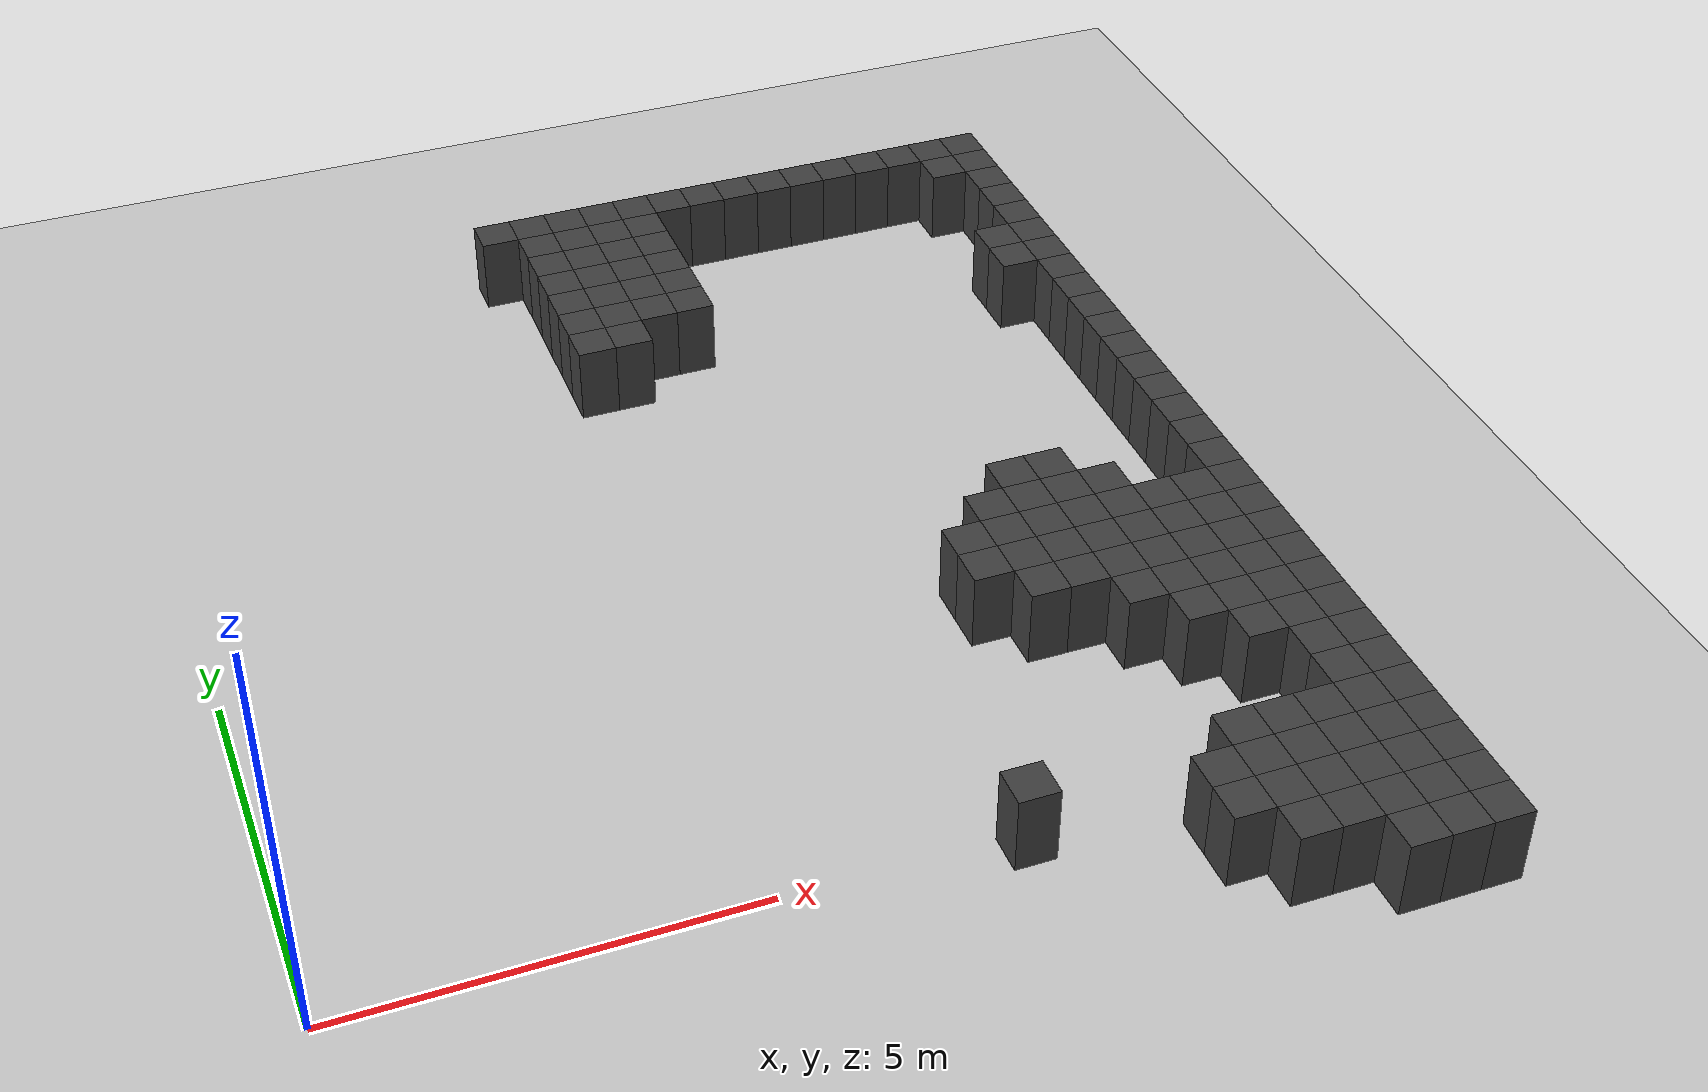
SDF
<sdf version="1.7">
 <world name="map_7981">
  <model name="ground_plane">
   <static>true</static>
   <link name="link">
    <collision name="collision">
     <geometry><plane><normal>0 0 1</normal><size>200 200</size></plane></geometry>
    </collision>
    <visual name="visual">
     <geometry><plane><normal>0 0 1</normal><size>200 200</size></plane></geometry>
     <material><ambient>0.8 0.8 0.8 1</ambient><diffuse>0.8 0.8 0.8 1</diffuse></material>
    </visual>
   </link>
  </model>
  <model name="maze_environment">
   <static>true</static>
   <link name="wall_35">
    <pose>5.250 12.250 0.500 0 0 0</pose>
    <collision name="col"><geometry><box><size>0.5 0.5 1.0</size></box></geometry></collision>
    <visual name="vis">
     <geometry><box><size>0.5 0.5 1.0</size></box></geometry>
     <material><ambient>0.15 0.15 0.15 1</ambient><diffuse>0.25 0.25 0.25 1</diffuse></material>
    </visual>
   </link>
   <link name="wall_36">
    <pose>5.750 12.250 0.500 0 0 0</pose>
    <collision name="col"><geometry><box><size>0.5 0.5 1.0</size></box></geometry></collision>
    <visual name="vis">
     <geometry><box><size>0.5 0.5 1.0</size></box></geometry>
     <material><ambient>0.15 0.15 0.15 1</ambient><diffuse>0.25 0.25 0.25 1</diffuse></material>
    </visual>
   </link>
   <link name="wall_37">
    <pose>6.250 12.250 0.500 0 0 0</pose>
    <collision name="col"><geometry><box><size>0.5 0.5 1.0</size></box></geometry></collision>
    <visual name="vis">
     <geometry><box><size>0.5 0.5 1.0</size></box></geometry>
     <material><ambient>0.15 0.15 0.15 1</ambient><diffuse>0.25 0.25 0.25 1</diffuse></material>
    </visual>
   </link>
   <link name="wall_38">
    <pose>6.750 12.250 0.500 0 0 0</pose>
    <collision name="col"><geometry><box><size>0.5 0.5 1.0</size></box></geometry></collision>
    <visual name="vis">
     <geometry><box><size>0.5 0.5 1.0</size></box></geometry>
     <material><ambient>0.15 0.15 0.15 1</ambient><diffuse>0.25 0.25 0.25 1</diffuse></material>
    </visual>
   </link>
   <link name="wall_39">
    <pose>7.250 12.250 0.500 0 0 0</pose>
    <collision name="col"><geometry><box><size>0.5 0.5 1.0</size></box></geometry></collision>
    <visual name="vis">
     <geometry><box><size>0.5 0.5 1.0</size></box></geometry>
     <material><ambient>0.15 0.15 0.15 1</ambient><diffuse>0.25 0.25 0.25 1</diffuse></material>
    </visual>
   </link>
   <link name="wall_40">
    <pose>7.750 12.250 0.500 0 0 0</pose>
    <collision name="col"><geometry><box><size>0.5 0.5 1.0</size></box></geometry></collision>
    <visual name="vis">
     <geometry><box><size>0.5 0.5 1.0</size></box></geometry>
     <material><ambient>0.15 0.15 0.15 1</ambient><diffuse>0.25 0.25 0.25 1</diffuse></material>
    </visual>
   </link>
   <link name="wall_41">
    <pose>8.250 12.250 0.500 0 0 0</pose>
    <collision name="col"><geometry><box><size>0.5 0.5 1.0</size></box></geometry></collision>
    <visual name="vis">
     <geometry><box><size>0.5 0.5 1.0</size></box></geometry>
     <material><ambient>0.15 0.15 0.15 1</ambient><diffuse>0.25 0.25 0.25 1</diffuse></material>
    </visual>
   </link>
   <link name="wall_42">
    <pose>8.750 12.250 0.500 0 0 0</pose>
    <collision name="col"><geometry><box><size>0.5 0.5 1.0</size></box></geometry></collision>
    <visual name="vis">
     <geometry><box><size>0.5 0.5 1.0</size></box></geometry>
     <material><ambient>0.15 0.15 0.15 1</ambient><diffuse>0.25 0.25 0.25 1</diffuse></material>
    </visual>
   </link>
   <link name="wall_43">
    <pose>9.250 12.250 0.500 0 0 0</pose>
    <collision name="col"><geometry><box><size>0.5 0.5 1.0</size></box></geometry></collision>
    <visual name="vis">
     <geometry><box><size>0.5 0.5 1.0</size></box></geometry>
     <material><ambient>0.15 0.15 0.15 1</ambient><diffuse>0.25 0.25 0.25 1</diffuse></material>
    </visual>
   </link>
   <link name="wall_44">
    <pose>9.750 12.250 0.500 0 0 0</pose>
    <collision name="col"><geometry><box><size>0.5 0.5 1.0</size></box></geometry></collision>
    <visual name="vis">
     <geometry><box><size>0.5 0.5 1.0</size></box></geometry>
     <material><ambient>0.15 0.15 0.15 1</ambient><diffuse>0.25 0.25 0.25 1</diffuse></material>
    </visual>
   </link>
   <link name="wall_45">
    <pose>10.250 12.250 0.500 0 0 0</pose>
    <collision name="col"><geometry><box><size>0.5 0.5 1.0</size></box></geometry></collision>
    <visual name="vis">
     <geometry><box><size>0.5 0.5 1.0</size></box></geometry>
     <material><ambient>0.15 0.15 0.15 1</ambient><diffuse>0.25 0.25 0.25 1</diffuse></material>
    </visual>
   </link>
   <link name="wall_46">
    <pose>10.750 12.250 0.500 0 0 0</pose>
    <collision name="col"><geometry><box><size>0.5 0.5 1.0</size></box></geometry></collision>
    <visual name="vis">
     <geometry><box><size>0.5 0.5 1.0</size></box></geometry>
     <material><ambient>0.15 0.15 0.15 1</ambient><diffuse>0.25 0.25 0.25 1</diffuse></material>
    </visual>
   </link>
   <link name="wall_47">
    <pose>11.250 12.250 0.500 0 0 0</pose>
    <collision name="col"><geometry><box><size>0.5 0.5 1.0</size></box></geometry></collision>
    <visual name="vis">
     <geometry><box><size>0.5 0.5 1.0</size></box></geometry>
     <material><ambient>0.15 0.15 0.15 1</ambient><diffuse>0.25 0.25 0.25 1</diffuse></material>
    </visual>
   </link>
   <link name="wall_48">
    <pose>11.750 12.250 0.500 0 0 0</pose>
    <collision name="col"><geometry><box><size>0.5 0.5 1.0</size></box></geometry></collision>
    <visual name="vis">
     <geometry><box><size>0.5 0.5 1.0</size></box></geometry>
     <material><ambient>0.15 0.15 0.15 1</ambient><diffuse>0.25 0.25 0.25 1</diffuse></material>
    </visual>
   </link>
   <link name="wall_49">
    <pose>12.250 12.250 0.500 0 0 0</pose>
    <collision name="col"><geometry><box><size>0.5 0.5 1.0</size></box></geometry></collision>
    <visual name="vis">
     <geometry><box><size>0.5 0.5 1.0</size></box></geometry>
     <material><ambient>0.15 0.15 0.15 1</ambient><diffuse>0.25 0.25 0.25 1</diffuse></material>
    </visual>
   </link>
   <link name="wall_67">
    <pose>5.750 11.750 0.500 0 0 0</pose>
    <collision name="col"><geometry><box><size>0.5 0.5 1.0</size></box></geometry></collision>
    <visual name="vis">
     <geometry><box><size>0.5 0.5 1.0</size></box></geometry>
     <material><ambient>0.15 0.15 0.15 1</ambient><diffuse>0.25 0.25 0.25 1</diffuse></material>
    </visual>
   </link>
   <link name="wall_68">
    <pose>6.250 11.750 0.500 0 0 0</pose>
    <collision name="col"><geometry><box><size>0.5 0.5 1.0</size></box></geometry></collision>
    <visual name="vis">
     <geometry><box><size>0.5 0.5 1.0</size></box></geometry>
     <material><ambient>0.15 0.15 0.15 1</ambient><diffuse>0.25 0.25 0.25 1</diffuse></material>
    </visual>
   </link>
   <link name="wall_69">
    <pose>6.750 11.750 0.500 0 0 0</pose>
    <collision name="col"><geometry><box><size>0.5 0.5 1.0</size></box></geometry></collision>
    <visual name="vis">
     <geometry><box><size>0.5 0.5 1.0</size></box></geometry>
     <material><ambient>0.15 0.15 0.15 1</ambient><diffuse>0.25 0.25 0.25 1</diffuse></material>
    </visual>
   </link>
   <link name="wall_70">
    <pose>7.250 11.750 0.500 0 0 0</pose>
    <collision name="col"><geometry><box><size>0.5 0.5 1.0</size></box></geometry></collision>
    <visual name="vis">
     <geometry><box><size>0.5 0.5 1.0</size></box></geometry>
     <material><ambient>0.15 0.15 0.15 1</ambient><diffuse>0.25 0.25 0.25 1</diffuse></material>
    </visual>
   </link>
   <link name="wall_71">
    <pose>11.750 11.750 0.500 0 0 0</pose>
    <collision name="col"><geometry><box><size>0.5 0.5 1.0</size></box></geometry></collision>
    <visual name="vis">
     <geometry><box><size>0.5 0.5 1.0</size></box></geometry>
     <material><ambient>0.15 0.15 0.15 1</ambient><diffuse>0.25 0.25 0.25 1</diffuse></material>
    </visual>
   </link>
   <link name="wall_72">
    <pose>12.250 11.750 0.500 0 0 0</pose>
    <collision name="col"><geometry><box><size>0.5 0.5 1.0</size></box></geometry></collision>
    <visual name="vis">
     <geometry><box><size>0.5 0.5 1.0</size></box></geometry>
     <material><ambient>0.15 0.15 0.15 1</ambient><diffuse>0.25 0.25 0.25 1</diffuse></material>
    </visual>
   </link>
   <link name="wall_83">
    <pose>5.750 11.250 0.500 0 0 0</pose>
    <collision name="col"><geometry><box><size>0.5 0.5 1.0</size></box></geometry></collision>
    <visual name="vis">
     <geometry><box><size>0.5 0.5 1.0</size></box></geometry>
     <material><ambient>0.15 0.15 0.15 1</ambient><diffuse>0.25 0.25 0.25 1</diffuse></material>
    </visual>
   </link>
   <link name="wall_84">
    <pose>6.250 11.250 0.500 0 0 0</pose>
    <collision name="col"><geometry><box><size>0.5 0.5 1.0</size></box></geometry></collision>
    <visual name="vis">
     <geometry><box><size>0.5 0.5 1.0</size></box></geometry>
     <material><ambient>0.15 0.15 0.15 1</ambient><diffuse>0.25 0.25 0.25 1</diffuse></material>
    </visual>
   </link>
   <link name="wall_85">
    <pose>6.750 11.250 0.500 0 0 0</pose>
    <collision name="col"><geometry><box><size>0.5 0.5 1.0</size></box></geometry></collision>
    <visual name="vis">
     <geometry><box><size>0.5 0.5 1.0</size></box></geometry>
     <material><ambient>0.15 0.15 0.15 1</ambient><diffuse>0.25 0.25 0.25 1</diffuse></material>
    </visual>
   </link>
   <link name="wall_86">
    <pose>7.250 11.250 0.500 0 0 0</pose>
    <collision name="col"><geometry><box><size>0.5 0.5 1.0</size></box></geometry></collision>
    <visual name="vis">
     <geometry><box><size>0.5 0.5 1.0</size></box></geometry>
     <material><ambient>0.15 0.15 0.15 1</ambient><diffuse>0.25 0.25 0.25 1</diffuse></material>
    </visual>
   </link>
   <link name="wall_87">
    <pose>12.250 11.250 0.500 0 0 0</pose>
    <collision name="col"><geometry><box><size>0.5 0.5 1.0</size></box></geometry></collision>
    <visual name="vis">
     <geometry><box><size>0.5 0.5 1.0</size></box></geometry>
     <material><ambient>0.15 0.15 0.15 1</ambient><diffuse>0.25 0.25 0.25 1</diffuse></material>
    </visual>
   </link>
   <link name="wall_96">
    <pose>5.750 10.750 0.500 0 0 0</pose>
    <collision name="col"><geometry><box><size>0.5 0.5 1.0</size></box></geometry></collision>
    <visual name="vis">
     <geometry><box><size>0.5 0.5 1.0</size></box></geometry>
     <material><ambient>0.15 0.15 0.15 1</ambient><diffuse>0.25 0.25 0.25 1</diffuse></material>
    </visual>
   </link>
   <link name="wall_97">
    <pose>6.250 10.750 0.500 0 0 0</pose>
    <collision name="col"><geometry><box><size>0.5 0.5 1.0</size></box></geometry></collision>
    <visual name="vis">
     <geometry><box><size>0.5 0.5 1.0</size></box></geometry>
     <material><ambient>0.15 0.15 0.15 1</ambient><diffuse>0.25 0.25 0.25 1</diffuse></material>
    </visual>
   </link>
   <link name="wall_98">
    <pose>6.750 10.750 0.500 0 0 0</pose>
    <collision name="col"><geometry><box><size>0.5 0.5 1.0</size></box></geometry></collision>
    <visual name="vis">
     <geometry><box><size>0.5 0.5 1.0</size></box></geometry>
     <material><ambient>0.15 0.15 0.15 1</ambient><diffuse>0.25 0.25 0.25 1</diffuse></material>
    </visual>
   </link>
   <link name="wall_99">
    <pose>7.250 10.750 0.500 0 0 0</pose>
    <collision name="col"><geometry><box><size>0.5 0.5 1.0</size></box></geometry></collision>
    <visual name="vis">
     <geometry><box><size>0.5 0.5 1.0</size></box></geometry>
     <material><ambient>0.15 0.15 0.15 1</ambient><diffuse>0.25 0.25 0.25 1</diffuse></material>
    </visual>
   </link>
   <link name="wall_100">
    <pose>12.250 10.750 0.500 0 0 0</pose>
    <collision name="col"><geometry><box><size>0.5 0.5 1.0</size></box></geometry></collision>
    <visual name="vis">
     <geometry><box><size>0.5 0.5 1.0</size></box></geometry>
     <material><ambient>0.15 0.15 0.15 1</ambient><diffuse>0.25 0.25 0.25 1</diffuse></material>
    </visual>
   </link>
   <link name="wall_109">
    <pose>5.750 10.250 0.500 0 0 0</pose>
    <collision name="col"><geometry><box><size>0.5 0.5 1.0</size></box></geometry></collision>
    <visual name="vis">
     <geometry><box><size>0.5 0.5 1.0</size></box></geometry>
     <material><ambient>0.15 0.15 0.15 1</ambient><diffuse>0.25 0.25 0.25 1</diffuse></material>
    </visual>
   </link>
   <link name="wall_110">
    <pose>6.250 10.250 0.500 0 0 0</pose>
    <collision name="col"><geometry><box><size>0.5 0.5 1.0</size></box></geometry></collision>
    <visual name="vis">
     <geometry><box><size>0.5 0.5 1.0</size></box></geometry>
     <material><ambient>0.15 0.15 0.15 1</ambient><diffuse>0.25 0.25 0.25 1</diffuse></material>
    </visual>
   </link>
   <link name="wall_111">
    <pose>6.750 10.250 0.500 0 0 0</pose>
    <collision name="col"><geometry><box><size>0.5 0.5 1.0</size></box></geometry></collision>
    <visual name="vis">
     <geometry><box><size>0.5 0.5 1.0</size></box></geometry>
     <material><ambient>0.15 0.15 0.15 1</ambient><diffuse>0.25 0.25 0.25 1</diffuse></material>
    </visual>
   </link>
   <link name="wall_112">
    <pose>7.250 10.250 0.500 0 0 0</pose>
    <collision name="col"><geometry><box><size>0.5 0.5 1.0</size></box></geometry></collision>
    <visual name="vis">
     <geometry><box><size>0.5 0.5 1.0</size></box></geometry>
     <material><ambient>0.15 0.15 0.15 1</ambient><diffuse>0.25 0.25 0.25 1</diffuse></material>
    </visual>
   </link>
   <link name="wall_113">
    <pose>12.250 10.250 0.500 0 0 0</pose>
    <collision name="col"><geometry><box><size>0.5 0.5 1.0</size></box></geometry></collision>
    <visual name="vis">
     <geometry><box><size>0.5 0.5 1.0</size></box></geometry>
     <material><ambient>0.15 0.15 0.15 1</ambient><diffuse>0.25 0.25 0.25 1</diffuse></material>
    </visual>
   </link>
   <link name="wall_123">
    <pose>5.750 9.750 0.500 0 0 0</pose>
    <collision name="col"><geometry><box><size>0.5 0.5 1.0</size></box></geometry></collision>
    <visual name="vis">
     <geometry><box><size>0.5 0.5 1.0</size></box></geometry>
     <material><ambient>0.15 0.15 0.15 1</ambient><diffuse>0.25 0.25 0.25 1</diffuse></material>
    </visual>
   </link>
   <link name="wall_124">
    <pose>6.250 9.750 0.500 0 0 0</pose>
    <collision name="col"><geometry><box><size>0.5 0.5 1.0</size></box></geometry></collision>
    <visual name="vis">
     <geometry><box><size>0.5 0.5 1.0</size></box></geometry>
     <material><ambient>0.15 0.15 0.15 1</ambient><diffuse>0.25 0.25 0.25 1</diffuse></material>
    </visual>
   </link>
   <link name="wall_125">
    <pose>6.750 9.750 0.500 0 0 0</pose>
    <collision name="col"><geometry><box><size>0.5 0.5 1.0</size></box></geometry></collision>
    <visual name="vis">
     <geometry><box><size>0.5 0.5 1.0</size></box></geometry>
     <material><ambient>0.15 0.15 0.15 1</ambient><diffuse>0.25 0.25 0.25 1</diffuse></material>
    </visual>
   </link>
   <link name="wall_126">
    <pose>7.250 9.750 0.500 0 0 0</pose>
    <collision name="col"><geometry><box><size>0.5 0.5 1.0</size></box></geometry></collision>
    <visual name="vis">
     <geometry><box><size>0.5 0.5 1.0</size></box></geometry>
     <material><ambient>0.15 0.15 0.15 1</ambient><diffuse>0.25 0.25 0.25 1</diffuse></material>
    </visual>
   </link>
   <link name="wall_127">
    <pose>11.750 9.750 0.500 0 0 0</pose>
    <collision name="col"><geometry><box><size>0.5 0.5 1.0</size></box></geometry></collision>
    <visual name="vis">
     <geometry><box><size>0.5 0.5 1.0</size></box></geometry>
     <material><ambient>0.15 0.15 0.15 1</ambient><diffuse>0.25 0.25 0.25 1</diffuse></material>
    </visual>
   </link>
   <link name="wall_128">
    <pose>12.250 9.750 0.500 0 0 0</pose>
    <collision name="col"><geometry><box><size>0.5 0.5 1.0</size></box></geometry></collision>
    <visual name="vis">
     <geometry><box><size>0.5 0.5 1.0</size></box></geometry>
     <material><ambient>0.15 0.15 0.15 1</ambient><diffuse>0.25 0.25 0.25 1</diffuse></material>
    </visual>
   </link>
   <link name="wall_137">
    <pose>5.750 9.250 0.500 0 0 0</pose>
    <collision name="col"><geometry><box><size>0.5 0.5 1.0</size></box></geometry></collision>
    <visual name="vis">
     <geometry><box><size>0.5 0.5 1.0</size></box></geometry>
     <material><ambient>0.15 0.15 0.15 1</ambient><diffuse>0.25 0.25 0.25 1</diffuse></material>
    </visual>
   </link>
   <link name="wall_138">
    <pose>6.250 9.250 0.500 0 0 0</pose>
    <collision name="col"><geometry><box><size>0.5 0.5 1.0</size></box></geometry></collision>
    <visual name="vis">
     <geometry><box><size>0.5 0.5 1.0</size></box></geometry>
     <material><ambient>0.15 0.15 0.15 1</ambient><diffuse>0.25 0.25 0.25 1</diffuse></material>
    </visual>
   </link>
   <link name="wall_139">
    <pose>11.750 9.250 0.500 0 0 0</pose>
    <collision name="col"><geometry><box><size>0.5 0.5 1.0</size></box></geometry></collision>
    <visual name="vis">
     <geometry><box><size>0.5 0.5 1.0</size></box></geometry>
     <material><ambient>0.15 0.15 0.15 1</ambient><diffuse>0.25 0.25 0.25 1</diffuse></material>
    </visual>
   </link>
   <link name="wall_140">
    <pose>12.250 9.250 0.500 0 0 0</pose>
    <collision name="col"><geometry><box><size>0.5 0.5 1.0</size></box></geometry></collision>
    <visual name="vis">
     <geometry><box><size>0.5 0.5 1.0</size></box></geometry>
     <material><ambient>0.15 0.15 0.15 1</ambient><diffuse>0.25 0.25 0.25 1</diffuse></material>
    </visual>
   </link>
   <link name="wall_145">
    <pose>12.250 8.750 0.500 0 0 0</pose>
    <collision name="col"><geometry><box><size>0.5 0.5 1.0</size></box></geometry></collision>
    <visual name="vis">
     <geometry><box><size>0.5 0.5 1.0</size></box></geometry>
     <material><ambient>0.15 0.15 0.15 1</ambient><diffuse>0.25 0.25 0.25 1</diffuse></material>
    </visual>
   </link>
   <link name="wall_148">
    <pose>12.250 8.250 0.500 0 0 0</pose>
    <collision name="col"><geometry><box><size>0.5 0.5 1.0</size></box></geometry></collision>
    <visual name="vis">
     <geometry><box><size>0.5 0.5 1.0</size></box></geometry>
     <material><ambient>0.15 0.15 0.15 1</ambient><diffuse>0.25 0.25 0.25 1</diffuse></material>
    </visual>
   </link>
   <link name="wall_153">
    <pose>12.250 7.750 0.500 0 0 0</pose>
    <collision name="col"><geometry><box><size>0.5 0.5 1.0</size></box></geometry></collision>
    <visual name="vis">
     <geometry><box><size>0.5 0.5 1.0</size></box></geometry>
     <material><ambient>0.15 0.15 0.15 1</ambient><diffuse>0.25 0.25 0.25 1</diffuse></material>
    </visual>
   </link>
   <link name="wall_156">
    <pose>12.250 7.250 0.500 0 0 0</pose>
    <collision name="col"><geometry><box><size>0.5 0.5 1.0</size></box></geometry></collision>
    <visual name="vis">
     <geometry><box><size>0.5 0.5 1.0</size></box></geometry>
     <material><ambient>0.15 0.15 0.15 1</ambient><diffuse>0.25 0.25 0.25 1</diffuse></material>
    </visual>
   </link>
   <link name="wall_161">
    <pose>12.250 6.750 0.500 0 0 0</pose>
    <collision name="col"><geometry><box><size>0.5 0.5 1.0</size></box></geometry></collision>
    <visual name="vis">
     <geometry><box><size>0.5 0.5 1.0</size></box></geometry>
     <material><ambient>0.15 0.15 0.15 1</ambient><diffuse>0.25 0.25 0.25 1</diffuse></material>
    </visual>
   </link>
   <link name="wall_170">
    <pose>12.250 6.250 0.500 0 0 0</pose>
    <collision name="col"><geometry><box><size>0.5 0.5 1.0</size></box></geometry></collision>
    <visual name="vis">
     <geometry><box><size>0.5 0.5 1.0</size></box></geometry>
     <material><ambient>0.15 0.15 0.15 1</ambient><diffuse>0.25 0.25 0.25 1</diffuse></material>
    </visual>
   </link>
   <link name="wall_178">
    <pose>12.250 5.750 0.500 0 0 0</pose>
    <collision name="col"><geometry><box><size>0.5 0.5 1.0</size></box></geometry></collision>
    <visual name="vis">
     <geometry><box><size>0.5 0.5 1.0</size></box></geometry>
     <material><ambient>0.15 0.15 0.15 1</ambient><diffuse>0.25 0.25 0.25 1</diffuse></material>
    </visual>
   </link>
   <link name="wall_186">
    <pose>12.250 5.250 0.500 0 0 0</pose>
    <collision name="col"><geometry><box><size>0.5 0.5 1.0</size></box></geometry></collision>
    <visual name="vis">
     <geometry><box><size>0.5 0.5 1.0</size></box></geometry>
     <material><ambient>0.15 0.15 0.15 1</ambient><diffuse>0.25 0.25 0.25 1</diffuse></material>
    </visual>
   </link>
   <link name="wall_193">
    <pose>9.750 4.750 0.500 0 0 0</pose>
    <collision name="col"><geometry><box><size>0.5 0.5 1.0</size></box></geometry></collision>
    <visual name="vis">
     <geometry><box><size>0.5 0.5 1.0</size></box></geometry>
     <material><ambient>0.15 0.15 0.15 1</ambient><diffuse>0.25 0.25 0.25 1</diffuse></material>
    </visual>
   </link>
   <link name="wall_194">
    <pose>10.250 4.750 0.500 0 0 0</pose>
    <collision name="col"><geometry><box><size>0.5 0.5 1.0</size></box></geometry></collision>
    <visual name="vis">
     <geometry><box><size>0.5 0.5 1.0</size></box></geometry>
     <material><ambient>0.15 0.15 0.15 1</ambient><diffuse>0.25 0.25 0.25 1</diffuse></material>
    </visual>
   </link>
   <link name="wall_195">
    <pose>12.250 4.750 0.500 0 0 0</pose>
    <collision name="col"><geometry><box><size>0.5 0.5 1.0</size></box></geometry></collision>
    <visual name="vis">
     <geometry><box><size>0.5 0.5 1.0</size></box></geometry>
     <material><ambient>0.15 0.15 0.15 1</ambient><diffuse>0.25 0.25 0.25 1</diffuse></material>
    </visual>
   </link>
   <link name="wall_202">
    <pose>9.250 4.250 0.500 0 0 0</pose>
    <collision name="col"><geometry><box><size>0.5 0.5 1.0</size></box></geometry></collision>
    <visual name="vis">
     <geometry><box><size>0.5 0.5 1.0</size></box></geometry>
     <material><ambient>0.15 0.15 0.15 1</ambient><diffuse>0.25 0.25 0.25 1</diffuse></material>
    </visual>
   </link>
   <link name="wall_203">
    <pose>9.750 4.250 0.500 0 0 0</pose>
    <collision name="col"><geometry><box><size>0.5 0.5 1.0</size></box></geometry></collision>
    <visual name="vis">
     <geometry><box><size>0.5 0.5 1.0</size></box></geometry>
     <material><ambient>0.15 0.15 0.15 1</ambient><diffuse>0.25 0.25 0.25 1</diffuse></material>
    </visual>
   </link>
   <link name="wall_204">
    <pose>10.250 4.250 0.500 0 0 0</pose>
    <collision name="col"><geometry><box><size>0.5 0.5 1.0</size></box></geometry></collision>
    <visual name="vis">
     <geometry><box><size>0.5 0.5 1.0</size></box></geometry>
     <material><ambient>0.15 0.15 0.15 1</ambient><diffuse>0.25 0.25 0.25 1</diffuse></material>
    </visual>
   </link>
   <link name="wall_205">
    <pose>10.750 4.250 0.500 0 0 0</pose>
    <collision name="col"><geometry><box><size>0.5 0.5 1.0</size></box></geometry></collision>
    <visual name="vis">
     <geometry><box><size>0.5 0.5 1.0</size></box></geometry>
     <material><ambient>0.15 0.15 0.15 1</ambient><diffuse>0.25 0.25 0.25 1</diffuse></material>
    </visual>
   </link>
   <link name="wall_206">
    <pose>12.250 4.250 0.500 0 0 0</pose>
    <collision name="col"><geometry><box><size>0.5 0.5 1.0</size></box></geometry></collision>
    <visual name="vis">
     <geometry><box><size>0.5 0.5 1.0</size></box></geometry>
     <material><ambient>0.15 0.15 0.15 1</ambient><diffuse>0.25 0.25 0.25 1</diffuse></material>
    </visual>
   </link>
   <link name="wall_220">
    <pose>8.750 3.750 0.500 0 0 0</pose>
    <collision name="col"><geometry><box><size>0.5 0.5 1.0</size></box></geometry></collision>
    <visual name="vis">
     <geometry><box><size>0.5 0.5 1.0</size></box></geometry>
     <material><ambient>0.15 0.15 0.15 1</ambient><diffuse>0.25 0.25 0.25 1</diffuse></material>
    </visual>
   </link>
   <link name="wall_221">
    <pose>9.250 3.750 0.500 0 0 0</pose>
    <collision name="col"><geometry><box><size>0.5 0.5 1.0</size></box></geometry></collision>
    <visual name="vis">
     <geometry><box><size>0.5 0.5 1.0</size></box></geometry>
     <material><ambient>0.15 0.15 0.15 1</ambient><diffuse>0.25 0.25 0.25 1</diffuse></material>
    </visual>
   </link>
   <link name="wall_222">
    <pose>9.750 3.750 0.500 0 0 0</pose>
    <collision name="col"><geometry><box><size>0.5 0.5 1.0</size></box></geometry></collision>
    <visual name="vis">
     <geometry><box><size>0.5 0.5 1.0</size></box></geometry>
     <material><ambient>0.15 0.15 0.15 1</ambient><diffuse>0.25 0.25 0.25 1</diffuse></material>
    </visual>
   </link>
   <link name="wall_223">
    <pose>10.250 3.750 0.500 0 0 0</pose>
    <collision name="col"><geometry><box><size>0.5 0.5 1.0</size></box></geometry></collision>
    <visual name="vis">
     <geometry><box><size>0.5 0.5 1.0</size></box></geometry>
     <material><ambient>0.15 0.15 0.15 1</ambient><diffuse>0.25 0.25 0.25 1</diffuse></material>
    </visual>
   </link>
   <link name="wall_224">
    <pose>10.750 3.750 0.500 0 0 0</pose>
    <collision name="col"><geometry><box><size>0.5 0.5 1.0</size></box></geometry></collision>
    <visual name="vis">
     <geometry><box><size>0.5 0.5 1.0</size></box></geometry>
     <material><ambient>0.15 0.15 0.15 1</ambient><diffuse>0.25 0.25 0.25 1</diffuse></material>
    </visual>
   </link>
   <link name="wall_225">
    <pose>11.250 3.750 0.500 0 0 0</pose>
    <collision name="col"><geometry><box><size>0.5 0.5 1.0</size></box></geometry></collision>
    <visual name="vis">
     <geometry><box><size>0.5 0.5 1.0</size></box></geometry>
     <material><ambient>0.15 0.15 0.15 1</ambient><diffuse>0.25 0.25 0.25 1</diffuse></material>
    </visual>
   </link>
   <link name="wall_226">
    <pose>11.750 3.750 0.500 0 0 0</pose>
    <collision name="col"><geometry><box><size>0.5 0.5 1.0</size></box></geometry></collision>
    <visual name="vis">
     <geometry><box><size>0.5 0.5 1.0</size></box></geometry>
     <material><ambient>0.15 0.15 0.15 1</ambient><diffuse>0.25 0.25 0.25 1</diffuse></material>
    </visual>
   </link>
   <link name="wall_227">
    <pose>12.250 3.750 0.500 0 0 0</pose>
    <collision name="col"><geometry><box><size>0.5 0.5 1.0</size></box></geometry></collision>
    <visual name="vis">
     <geometry><box><size>0.5 0.5 1.0</size></box></geometry>
     <material><ambient>0.15 0.15 0.15 1</ambient><diffuse>0.25 0.25 0.25 1</diffuse></material>
    </visual>
   </link>
   <link name="wall_251">
    <pose>8.750 3.250 0.500 0 0 0</pose>
    <collision name="col"><geometry><box><size>0.5 0.5 1.0</size></box></geometry></collision>
    <visual name="vis">
     <geometry><box><size>0.5 0.5 1.0</size></box></geometry>
     <material><ambient>0.15 0.15 0.15 1</ambient><diffuse>0.25 0.25 0.25 1</diffuse></material>
    </visual>
   </link>
   <link name="wall_252">
    <pose>9.250 3.250 0.500 0 0 0</pose>
    <collision name="col"><geometry><box><size>0.5 0.5 1.0</size></box></geometry></collision>
    <visual name="vis">
     <geometry><box><size>0.5 0.5 1.0</size></box></geometry>
     <material><ambient>0.15 0.15 0.15 1</ambient><diffuse>0.25 0.25 0.25 1</diffuse></material>
    </visual>
   </link>
   <link name="wall_253">
    <pose>9.750 3.250 0.500 0 0 0</pose>
    <collision name="col"><geometry><box><size>0.5 0.5 1.0</size></box></geometry></collision>
    <visual name="vis">
     <geometry><box><size>0.5 0.5 1.0</size></box></geometry>
     <material><ambient>0.15 0.15 0.15 1</ambient><diffuse>0.25 0.25 0.25 1</diffuse></material>
    </visual>
   </link>
   <link name="wall_254">
    <pose>10.250 3.250 0.500 0 0 0</pose>
    <collision name="col"><geometry><box><size>0.5 0.5 1.0</size></box></geometry></collision>
    <visual name="vis">
     <geometry><box><size>0.5 0.5 1.0</size></box></geometry>
     <material><ambient>0.15 0.15 0.15 1</ambient><diffuse>0.25 0.25 0.25 1</diffuse></material>
    </visual>
   </link>
   <link name="wall_255">
    <pose>10.750 3.250 0.500 0 0 0</pose>
    <collision name="col"><geometry><box><size>0.5 0.5 1.0</size></box></geometry></collision>
    <visual name="vis">
     <geometry><box><size>0.5 0.5 1.0</size></box></geometry>
     <material><ambient>0.15 0.15 0.15 1</ambient><diffuse>0.25 0.25 0.25 1</diffuse></material>
    </visual>
   </link>
   <link name="wall_256">
    <pose>11.250 3.250 0.500 0 0 0</pose>
    <collision name="col"><geometry><box><size>0.5 0.5 1.0</size></box></geometry></collision>
    <visual name="vis">
     <geometry><box><size>0.5 0.5 1.0</size></box></geometry>
     <material><ambient>0.15 0.15 0.15 1</ambient><diffuse>0.25 0.25 0.25 1</diffuse></material>
    </visual>
   </link>
   <link name="wall_257">
    <pose>11.750 3.250 0.500 0 0 0</pose>
    <collision name="col"><geometry><box><size>0.5 0.5 1.0</size></box></geometry></collision>
    <visual name="vis">
     <geometry><box><size>0.5 0.5 1.0</size></box></geometry>
     <material><ambient>0.15 0.15 0.15 1</ambient><diffuse>0.25 0.25 0.25 1</diffuse></material>
    </visual>
   </link>
   <link name="wall_258">
    <pose>12.250 3.250 0.500 0 0 0</pose>
    <collision name="col"><geometry><box><size>0.5 0.5 1.0</size></box></geometry></collision>
    <visual name="vis">
     <geometry><box><size>0.5 0.5 1.0</size></box></geometry>
     <material><ambient>0.15 0.15 0.15 1</ambient><diffuse>0.25 0.25 0.25 1</diffuse></material>
    </visual>
   </link>
   <link name="wall_281">
    <pose>9.250 2.750 0.500 0 0 0</pose>
    <collision name="col"><geometry><box><size>0.5 0.5 1.0</size></box></geometry></collision>
    <visual name="vis">
     <geometry><box><size>0.5 0.5 1.0</size></box></geometry>
     <material><ambient>0.15 0.15 0.15 1</ambient><diffuse>0.25 0.25 0.25 1</diffuse></material>
    </visual>
   </link>
   <link name="wall_282">
    <pose>9.750 2.750 0.500 0 0 0</pose>
    <collision name="col"><geometry><box><size>0.5 0.5 1.0</size></box></geometry></collision>
    <visual name="vis">
     <geometry><box><size>0.5 0.5 1.0</size></box></geometry>
     <material><ambient>0.15 0.15 0.15 1</ambient><diffuse>0.25 0.25 0.25 1</diffuse></material>
    </visual>
   </link>
   <link name="wall_283">
    <pose>10.250 2.750 0.500 0 0 0</pose>
    <collision name="col"><geometry><box><size>0.5 0.5 1.0</size></box></geometry></collision>
    <visual name="vis">
     <geometry><box><size>0.5 0.5 1.0</size></box></geometry>
     <material><ambient>0.15 0.15 0.15 1</ambient><diffuse>0.25 0.25 0.25 1</diffuse></material>
    </visual>
   </link>
   <link name="wall_284">
    <pose>10.750 2.750 0.500 0 0 0</pose>
    <collision name="col"><geometry><box><size>0.5 0.5 1.0</size></box></geometry></collision>
    <visual name="vis">
     <geometry><box><size>0.5 0.5 1.0</size></box></geometry>
     <material><ambient>0.15 0.15 0.15 1</ambient><diffuse>0.25 0.25 0.25 1</diffuse></material>
    </visual>
   </link>
   <link name="wall_285">
    <pose>11.250 2.750 0.500 0 0 0</pose>
    <collision name="col"><geometry><box><size>0.5 0.5 1.0</size></box></geometry></collision>
    <visual name="vis">
     <geometry><box><size>0.5 0.5 1.0</size></box></geometry>
     <material><ambient>0.15 0.15 0.15 1</ambient><diffuse>0.25 0.25 0.25 1</diffuse></material>
    </visual>
   </link>
   <link name="wall_286">
    <pose>11.750 2.750 0.500 0 0 0</pose>
    <collision name="col"><geometry><box><size>0.5 0.5 1.0</size></box></geometry></collision>
    <visual name="vis">
     <geometry><box><size>0.5 0.5 1.0</size></box></geometry>
     <material><ambient>0.15 0.15 0.15 1</ambient><diffuse>0.25 0.25 0.25 1</diffuse></material>
    </visual>
   </link>
   <link name="wall_287">
    <pose>12.250 2.750 0.500 0 0 0</pose>
    <collision name="col"><geometry><box><size>0.5 0.5 1.0</size></box></geometry></collision>
    <visual name="vis">
     <geometry><box><size>0.5 0.5 1.0</size></box></geometry>
     <material><ambient>0.15 0.15 0.15 1</ambient><diffuse>0.25 0.25 0.25 1</diffuse></material>
    </visual>
   </link>
   <link name="wall_308">
    <pose>10.250 2.250 0.500 0 0 0</pose>
    <collision name="col"><geometry><box><size>0.5 0.5 1.0</size></box></geometry></collision>
    <visual name="vis">
     <geometry><box><size>0.5 0.5 1.0</size></box></geometry>
     <material><ambient>0.15 0.15 0.15 1</ambient><diffuse>0.25 0.25 0.25 1</diffuse></material>
    </visual>
   </link>
   <link name="wall_309">
    <pose>10.750 2.250 0.500 0 0 0</pose>
    <collision name="col"><geometry><box><size>0.5 0.5 1.0</size></box></geometry></collision>
    <visual name="vis">
     <geometry><box><size>0.5 0.5 1.0</size></box></geometry>
     <material><ambient>0.15 0.15 0.15 1</ambient><diffuse>0.25 0.25 0.25 1</diffuse></material>
    </visual>
   </link>
   <link name="wall_310">
    <pose>11.250 2.250 0.500 0 0 0</pose>
    <collision name="col"><geometry><box><size>0.5 0.5 1.0</size></box></geometry></collision>
    <visual name="vis">
     <geometry><box><size>0.5 0.5 1.0</size></box></geometry>
     <material><ambient>0.15 0.15 0.15 1</ambient><diffuse>0.25 0.25 0.25 1</diffuse></material>
    </visual>
   </link>
   <link name="wall_311">
    <pose>11.750 2.250 0.500 0 0 0</pose>
    <collision name="col"><geometry><box><size>0.5 0.5 1.0</size></box></geometry></collision>
    <visual name="vis">
     <geometry><box><size>0.5 0.5 1.0</size></box></geometry>
     <material><ambient>0.15 0.15 0.15 1</ambient><diffuse>0.25 0.25 0.25 1</diffuse></material>
    </visual>
   </link>
   <link name="wall_312">
    <pose>12.250 2.250 0.500 0 0 0</pose>
    <collision name="col"><geometry><box><size>0.5 0.5 1.0</size></box></geometry></collision>
    <visual name="vis">
     <geometry><box><size>0.5 0.5 1.0</size></box></geometry>
     <material><ambient>0.15 0.15 0.15 1</ambient><diffuse>0.25 0.25 0.25 1</diffuse></material>
    </visual>
   </link>
   <link name="wall_335">
    <pose>10.750 1.750 0.500 0 0 0</pose>
    <collision name="col"><geometry><box><size>0.5 0.5 1.0</size></box></geometry></collision>
    <visual name="vis">
     <geometry><box><size>0.5 0.5 1.0</size></box></geometry>
     <material><ambient>0.15 0.15 0.15 1</ambient><diffuse>0.25 0.25 0.25 1</diffuse></material>
    </visual>
   </link>
   <link name="wall_336">
    <pose>11.250 1.750 0.500 0 0 0</pose>
    <collision name="col"><geometry><box><size>0.5 0.5 1.0</size></box></geometry></collision>
    <visual name="vis">
     <geometry><box><size>0.5 0.5 1.0</size></box></geometry>
     <material><ambient>0.15 0.15 0.15 1</ambient><diffuse>0.25 0.25 0.25 1</diffuse></material>
    </visual>
   </link>
   <link name="wall_337">
    <pose>11.750 1.750 0.500 0 0 0</pose>
    <collision name="col"><geometry><box><size>0.5 0.5 1.0</size></box></geometry></collision>
    <visual name="vis">
     <geometry><box><size>0.5 0.5 1.0</size></box></geometry>
     <material><ambient>0.15 0.15 0.15 1</ambient><diffuse>0.25 0.25 0.25 1</diffuse></material>
    </visual>
   </link>
   <link name="wall_338">
    <pose>12.250 1.750 0.500 0 0 0</pose>
    <collision name="col"><geometry><box><size>0.5 0.5 1.0</size></box></geometry></collision>
    <visual name="vis">
     <geometry><box><size>0.5 0.5 1.0</size></box></geometry>
     <material><ambient>0.15 0.15 0.15 1</ambient><diffuse>0.25 0.25 0.25 1</diffuse></material>
    </visual>
   </link>
   <link name="wall_355">
    <pose>11.250 1.250 0.500 0 0 0</pose>
    <collision name="col"><geometry><box><size>0.5 0.5 1.0</size></box></geometry></collision>
    <visual name="vis">
     <geometry><box><size>0.5 0.5 1.0</size></box></geometry>
     <material><ambient>0.15 0.15 0.15 1</ambient><diffuse>0.25 0.25 0.25 1</diffuse></material>
    </visual>
   </link>
   <link name="wall_356">
    <pose>11.750 1.250 0.500 0 0 0</pose>
    <collision name="col"><geometry><box><size>0.5 0.5 1.0</size></box></geometry></collision>
    <visual name="vis">
     <geometry><box><size>0.5 0.5 1.0</size></box></geometry>
     <material><ambient>0.15 0.15 0.15 1</ambient><diffuse>0.25 0.25 0.25 1</diffuse></material>
    </visual>
   </link>
   <link name="wall_357">
    <pose>12.250 1.250 0.500 0 0 0</pose>
    <collision name="col"><geometry><box><size>0.5 0.5 1.0</size></box></geometry></collision>
    <visual name="vis">
     <geometry><box><size>0.5 0.5 1.0</size></box></geometry>
     <material><ambient>0.15 0.15 0.15 1</ambient><diffuse>0.25 0.25 0.25 1</diffuse></material>
    </visual>
   </link>
   <link name="wall_368">
    <pose>11.750 0.750 0.500 0 0 0</pose>
    <collision name="col"><geometry><box><size>0.5 0.5 1.0</size></box></geometry></collision>
    <visual name="vis">
     <geometry><box><size>0.5 0.5 1.0</size></box></geometry>
     <material><ambient>0.15 0.15 0.15 1</ambient><diffuse>0.25 0.25 0.25 1</diffuse></material>
    </visual>
   </link>
   <link name="wall_369">
    <pose>12.250 0.750 0.500 0 0 0</pose>
    <collision name="col"><geometry><box><size>0.5 0.5 1.0</size></box></geometry></collision>
    <visual name="vis">
     <geometry><box><size>0.5 0.5 1.0</size></box></geometry>
     <material><ambient>0.15 0.15 0.15 1</ambient><diffuse>0.25 0.25 0.25 1</diffuse></material>
    </visual>
   </link>
   <link name="wall_378">
    <pose>11.750 0.250 0.500 0 0 0</pose>
    <collision name="col"><geometry><box><size>0.5 0.5 1.0</size></box></geometry></collision>
    <visual name="vis">
     <geometry><box><size>0.5 0.5 1.0</size></box></geometry>
     <material><ambient>0.15 0.15 0.15 1</ambient><diffuse>0.25 0.25 0.25 1</diffuse></material>
    </visual>
   </link>
   <link name="wall_379">
    <pose>12.250 0.250 0.500 0 0 0</pose>
    <collision name="col"><geometry><box><size>0.5 0.5 1.0</size></box></geometry></collision>
    <visual name="vis">
     <geometry><box><size>0.5 0.5 1.0</size></box></geometry>
     <material><ambient>0.15 0.15 0.15 1</ambient><diffuse>0.25 0.25 0.25 1</diffuse></material>
    </visual>
   </link>
   <link name="wall_386">
    <pose>7.750 -0.250 0.500 0 0 0</pose>
    <collision name="col"><geometry><box><size>0.5 0.5 1.0</size></box></geometry></collision>
    <visual name="vis">
     <geometry><box><size>0.5 0.5 1.0</size></box></geometry>
     <material><ambient>0.15 0.15 0.15 1</ambient><diffuse>0.25 0.25 0.25 1</diffuse></material>
    </visual>
   </link>
   <link name="wall_387">
    <pose>10.250 -0.250 0.500 0 0 0</pose>
    <collision name="col"><geometry><box><size>0.5 0.5 1.0</size></box></geometry></collision>
    <visual name="vis">
     <geometry><box><size>0.5 0.5 1.0</size></box></geometry>
     <material><ambient>0.15 0.15 0.15 1</ambient><diffuse>0.25 0.25 0.25 1</diffuse></material>
    </visual>
   </link>
   <link name="wall_388">
    <pose>10.750 -0.250 0.500 0 0 0</pose>
    <collision name="col"><geometry><box><size>0.5 0.5 1.0</size></box></geometry></collision>
    <visual name="vis">
     <geometry><box><size>0.5 0.5 1.0</size></box></geometry>
     <material><ambient>0.15 0.15 0.15 1</ambient><diffuse>0.25 0.25 0.25 1</diffuse></material>
    </visual>
   </link>
   <link name="wall_389">
    <pose>11.250 -0.250 0.500 0 0 0</pose>
    <collision name="col"><geometry><box><size>0.5 0.5 1.0</size></box></geometry></collision>
    <visual name="vis">
     <geometry><box><size>0.5 0.5 1.0</size></box></geometry>
     <material><ambient>0.15 0.15 0.15 1</ambient><diffuse>0.25 0.25 0.25 1</diffuse></material>
    </visual>
   </link>
   <link name="wall_390">
    <pose>11.750 -0.250 0.500 0 0 0</pose>
    <collision name="col"><geometry><box><size>0.5 0.5 1.0</size></box></geometry></collision>
    <visual name="vis">
     <geometry><box><size>0.5 0.5 1.0</size></box></geometry>
     <material><ambient>0.15 0.15 0.15 1</ambient><diffuse>0.25 0.25 0.25 1</diffuse></material>
    </visual>
   </link>
   <link name="wall_391">
    <pose>12.250 -0.250 0.500 0 0 0</pose>
    <collision name="col"><geometry><box><size>0.5 0.5 1.0</size></box></geometry></collision>
    <visual name="vis">
     <geometry><box><size>0.5 0.5 1.0</size></box></geometry>
     <material><ambient>0.15 0.15 0.15 1</ambient><diffuse>0.25 0.25 0.25 1</diffuse></material>
    </visual>
   </link>
   <link name="wall_399">
    <pose>9.750 -0.750 0.500 0 0 0</pose>
    <collision name="col"><geometry><box><size>0.5 0.5 1.0</size></box></geometry></collision>
    <visual name="vis">
     <geometry><box><size>0.5 0.5 1.0</size></box></geometry>
     <material><ambient>0.15 0.15 0.15 1</ambient><diffuse>0.25 0.25 0.25 1</diffuse></material>
    </visual>
   </link>
   <link name="wall_400">
    <pose>10.250 -0.750 0.500 0 0 0</pose>
    <collision name="col"><geometry><box><size>0.5 0.5 1.0</size></box></geometry></collision>
    <visual name="vis">
     <geometry><box><size>0.5 0.5 1.0</size></box></geometry>
     <material><ambient>0.15 0.15 0.15 1</ambient><diffuse>0.25 0.25 0.25 1</diffuse></material>
    </visual>
   </link>
   <link name="wall_401">
    <pose>10.750 -0.750 0.500 0 0 0</pose>
    <collision name="col"><geometry><box><size>0.5 0.5 1.0</size></box></geometry></collision>
    <visual name="vis">
     <geometry><box><size>0.5 0.5 1.0</size></box></geometry>
     <material><ambient>0.15 0.15 0.15 1</ambient><diffuse>0.25 0.25 0.25 1</diffuse></material>
    </visual>
   </link>
   <link name="wall_402">
    <pose>11.250 -0.750 0.500 0 0 0</pose>
    <collision name="col"><geometry><box><size>0.5 0.5 1.0</size></box></geometry></collision>
    <visual name="vis">
     <geometry><box><size>0.5 0.5 1.0</size></box></geometry>
     <material><ambient>0.15 0.15 0.15 1</ambient><diffuse>0.25 0.25 0.25 1</diffuse></material>
    </visual>
   </link>
   <link name="wall_403">
    <pose>11.750 -0.750 0.500 0 0 0</pose>
    <collision name="col"><geometry><box><size>0.5 0.5 1.0</size></box></geometry></collision>
    <visual name="vis">
     <geometry><box><size>0.5 0.5 1.0</size></box></geometry>
     <material><ambient>0.15 0.15 0.15 1</ambient><diffuse>0.25 0.25 0.25 1</diffuse></material>
    </visual>
   </link>
   <link name="wall_404">
    <pose>12.250 -0.750 0.500 0 0 0</pose>
    <collision name="col"><geometry><box><size>0.5 0.5 1.0</size></box></geometry></collision>
    <visual name="vis">
     <geometry><box><size>0.5 0.5 1.0</size></box></geometry>
     <material><ambient>0.15 0.15 0.15 1</ambient><diffuse>0.25 0.25 0.25 1</diffuse></material>
    </visual>
   </link>
   <link name="wall_414">
    <pose>9.750 -1.250 0.500 0 0 0</pose>
    <collision name="col"><geometry><box><size>0.5 0.5 1.0</size></box></geometry></collision>
    <visual name="vis">
     <geometry><box><size>0.5 0.5 1.0</size></box></geometry>
     <material><ambient>0.15 0.15 0.15 1</ambient><diffuse>0.25 0.25 0.25 1</diffuse></material>
    </visual>
   </link>
   <link name="wall_415">
    <pose>10.250 -1.250 0.500 0 0 0</pose>
    <collision name="col"><geometry><box><size>0.5 0.5 1.0</size></box></geometry></collision>
    <visual name="vis">
     <geometry><box><size>0.5 0.5 1.0</size></box></geometry>
     <material><ambient>0.15 0.15 0.15 1</ambient><diffuse>0.25 0.25 0.25 1</diffuse></material>
    </visual>
   </link>
   <link name="wall_416">
    <pose>10.750 -1.250 0.500 0 0 0</pose>
    <collision name="col"><geometry><box><size>0.5 0.5 1.0</size></box></geometry></collision>
    <visual name="vis">
     <geometry><box><size>0.5 0.5 1.0</size></box></geometry>
     <material><ambient>0.15 0.15 0.15 1</ambient><diffuse>0.25 0.25 0.25 1</diffuse></material>
    </visual>
   </link>
   <link name="wall_417">
    <pose>11.250 -1.250 0.500 0 0 0</pose>
    <collision name="col"><geometry><box><size>0.5 0.5 1.0</size></box></geometry></collision>
    <visual name="vis">
     <geometry><box><size>0.5 0.5 1.0</size></box></geometry>
     <material><ambient>0.15 0.15 0.15 1</ambient><diffuse>0.25 0.25 0.25 1</diffuse></material>
    </visual>
   </link>
   <link name="wall_418">
    <pose>11.750 -1.250 0.500 0 0 0</pose>
    <collision name="col"><geometry><box><size>0.5 0.5 1.0</size></box></geometry></collision>
    <visual name="vis">
     <geometry><box><size>0.5 0.5 1.0</size></box></geometry>
     <material><ambient>0.15 0.15 0.15 1</ambient><diffuse>0.25 0.25 0.25 1</diffuse></material>
    </visual>
   </link>
   <link name="wall_419">
    <pose>12.250 -1.250 0.500 0 0 0</pose>
    <collision name="col"><geometry><box><size>0.5 0.5 1.0</size></box></geometry></collision>
    <visual name="vis">
     <geometry><box><size>0.5 0.5 1.0</size></box></geometry>
     <material><ambient>0.15 0.15 0.15 1</ambient><diffuse>0.25 0.25 0.25 1</diffuse></material>
    </visual>
   </link>
   <link name="wall_433">
    <pose>10.250 -1.750 0.500 0 0 0</pose>
    <collision name="col"><geometry><box><size>0.5 0.5 1.0</size></box></geometry></collision>
    <visual name="vis">
     <geometry><box><size>0.5 0.5 1.0</size></box></geometry>
     <material><ambient>0.15 0.15 0.15 1</ambient><diffuse>0.25 0.25 0.25 1</diffuse></material>
    </visual>
   </link>
   <link name="wall_434">
    <pose>10.750 -1.750 0.500 0 0 0</pose>
    <collision name="col"><geometry><box><size>0.5 0.5 1.0</size></box></geometry></collision>
    <visual name="vis">
     <geometry><box><size>0.5 0.5 1.0</size></box></geometry>
     <material><ambient>0.15 0.15 0.15 1</ambient><diffuse>0.25 0.25 0.25 1</diffuse></material>
    </visual>
   </link>
   <link name="wall_435">
    <pose>11.250 -1.750 0.500 0 0 0</pose>
    <collision name="col"><geometry><box><size>0.5 0.5 1.0</size></box></geometry></collision>
    <visual name="vis">
     <geometry><box><size>0.5 0.5 1.0</size></box></geometry>
     <material><ambient>0.15 0.15 0.15 1</ambient><diffuse>0.25 0.25 0.25 1</diffuse></material>
    </visual>
   </link>
   <link name="wall_436">
    <pose>11.750 -1.750 0.500 0 0 0</pose>
    <collision name="col"><geometry><box><size>0.5 0.5 1.0</size></box></geometry></collision>
    <visual name="vis">
     <geometry><box><size>0.5 0.5 1.0</size></box></geometry>
     <material><ambient>0.15 0.15 0.15 1</ambient><diffuse>0.25 0.25 0.25 1</diffuse></material>
    </visual>
   </link>
   <link name="wall_437">
    <pose>12.250 -1.750 0.500 0 0 0</pose>
    <collision name="col"><geometry><box><size>0.5 0.5 1.0</size></box></geometry></collision>
    <visual name="vis">
     <geometry><box><size>0.5 0.5 1.0</size></box></geometry>
     <material><ambient>0.15 0.15 0.15 1</ambient><diffuse>0.25 0.25 0.25 1</diffuse></material>
    </visual>
   </link>
   <link name="wall_454">
    <pose>11.250 -2.250 0.500 0 0 0</pose>
    <collision name="col"><geometry><box><size>0.5 0.5 1.0</size></box></geometry></collision>
    <visual name="vis">
     <geometry><box><size>0.5 0.5 1.0</size></box></geometry>
     <material><ambient>0.15 0.15 0.15 1</ambient><diffuse>0.25 0.25 0.25 1</diffuse></material>
    </visual>
   </link>
   <link name="wall_455">
    <pose>11.750 -2.250 0.500 0 0 0</pose>
    <collision name="col"><geometry><box><size>0.5 0.5 1.0</size></box></geometry></collision>
    <visual name="vis">
     <geometry><box><size>0.5 0.5 1.0</size></box></geometry>
     <material><ambient>0.15 0.15 0.15 1</ambient><diffuse>0.25 0.25 0.25 1</diffuse></material>
    </visual>
   </link>
   <link name="wall_456">
    <pose>12.250 -2.250 0.500 0 0 0</pose>
    <collision name="col"><geometry><box><size>0.5 0.5 1.0</size></box></geometry></collision>
    <visual name="vis">
     <geometry><box><size>0.5 0.5 1.0</size></box></geometry>
     <material><ambient>0.15 0.15 0.15 1</ambient><diffuse>0.25 0.25 0.25 1</diffuse></material>
    </visual>
   </link>
  </model>
 </world>
</sdf>
